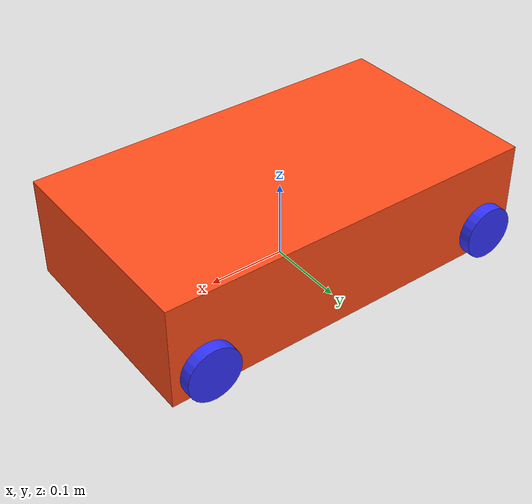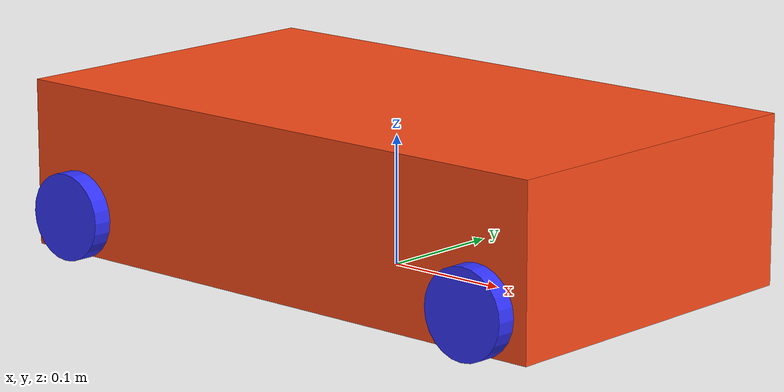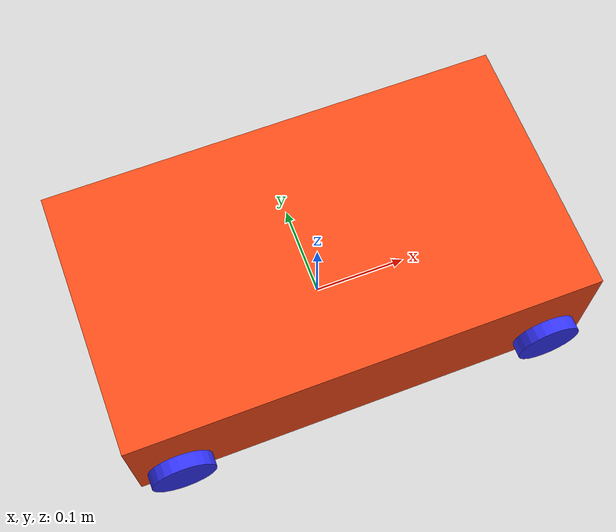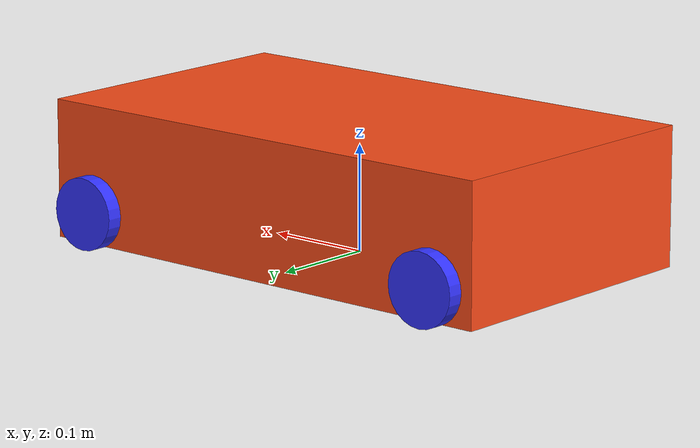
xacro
<?xml version="1.0"?>
<robot xmlns:xacro="http://www.ros.org/wiki/xacro" >

    <xacro:include filename="inertial_macros.xacro"/>

    <!-- Properties -->
    <xacro:property name="chassis_length" value="0.49"/>
    <xacro:property name="chassis_width" value="0.28"/>
    <xacro:property name="chassis_height" value="0.13"/>
    <xacro:property name="chassis_mass" value="5.0"/>

    <!-- Wheel properties -->
    <xacro:property name="wheel_radius" value="0.034"/>
    <xacro:property name="wheel_thickness" value="0.03"/>
    <xacro:property name="wheel_mass" value="0.05"/>

    <!-- Front wheels (steering) -->
    <xacro:property name="front_wheel_x" value="0.2"/>
    <xacro:property name="front_wheel_y" value="0.14"/>
    <xacro:property name="front_wheel_z" value="${-wheel_radius}"/>  <!-- Bánh xe chạm đất -->

    <!-- Rear wheels (fixed) -->
    <xacro:property name="rear_wheel_x" value="-0.2"/>
    <xacro:property name="rear_wheel_y" value="0.14"/>
    <xacro:property name="rear_wheel_z" value="${-wheel_radius}"/>  <!-- Bánh xe chạm đất -->

    <!-- Wheelbase (khoảng cách giữa bánh trước và sau) -->
    <xacro:property name="wheelbase" value="0.4"/>
    <!-- Track width (khoảng cách giữa 2 bánh trái/phải) - khớp Arduino -->
    <xacro:property name="track_width" value="0.21"/>

    <!-- Steering limits -->
    <xacro:property name="max_steer_angle" value="0.5236"/> <!-- ~30 degrees -->

    <material name="white">
        <color rgba="1 1 1 1" />
    </material>

    <material name="orange">
        <color rgba="1 0.3 0.1 1"/>
    </material>

    <material name="blue">
        <color rgba="0.2 0.2 1 1"/>
    </material>

    <material name="black">
        <color rgba="0 0 0 1"/>
    </material>

    <material name="red">
        <color rgba="1 0 0 1"/>
    </material>

    <!-- BASE LINK -->
    <link name="base_link">
    </link>

    <!-- BASE_FOOTPRINT LINK -->
    <joint name="base_footprint_joint" type="fixed">
        <parent link="base_link"/>
        <child link="base_footprint"/>
        <origin xyz="0 0 0" rpy="0 0 0"/>
    </joint>

    <link name="base_footprint">
    </link>

    <!-- CHASSIS LINK -->
    <joint name="chassis_joint" type="fixed">
        <parent link="base_link"/>
        <child link="chassis"/>
        <origin xyz="0 0 ${chassis_height/2}" rpy="0 0 0"/>
    </joint>

    <link name="chassis">
        <visual>
            <origin xyz="0 0 0" rpy="0 0 0"/>
            <geometry>
                <box size="${chassis_length} ${chassis_width} ${chassis_height}"/>
            </geometry>
            <material name="orange"/>
        </visual>
        <collision>
            <origin xyz="0 0 0" rpy="0 0 0"/>
            <geometry>
                <box size="${chassis_length} ${chassis_width} ${chassis_height}"/>
            </geometry>
        </collision>
        <xacro:inertial_box mass="${chassis_mass}" x="${chassis_length}" y="${chassis_width}" z="${chassis_height}">
            <origin xyz="0 0 0" rpy="0 0 0"/>
        </xacro:inertial_box>
    </link>

    <gazebo reference="chassis">
        <material>Gazebo/Orange</material>
    </gazebo>

    <!-- STEERING WHEEL JOINT (vô lăng - optional cho plugin) -->
    <joint name="steering_wheel_joint" type="revolute">
        <parent link="chassis"/>
        <child link="steering_wheel_link"/>
        <origin xyz="0.1 0 0.05" rpy="0 0 0"/>
        <axis xyz="0 0 1"/>
        <limit lower="${-max_steer_angle}" upper="${max_steer_angle}" effort="1000" velocity="10"/>
    </joint>

    <link name="steering_wheel_link">
        <visual>
            <origin xyz="0 0 0" rpy="0 0 0"/>
            <geometry>
                <cylinder radius="0.05" length="0.01"/>
            </geometry>
            <material name="black"/>
        </visual>
        <collision>
            <origin xyz="0 0 0" rpy="0 0 0"/>
            <geometry>
                <cylinder radius="0.05" length="0.01"/>
            </geometry>
        </collision>
        <xacro:inertial_cylinder mass="0.01" length="0.01" radius="0.05">
            <origin xyz="0 0 0" rpy="0 0 0"/>
        </xacro:inertial_cylinder>
    </link>

    <gazebo reference="steering_wheel_link">
        <material>Gazebo/Black</material>
    </gazebo>

    <!-- FRONT LEFT STEERING JOINT -->
    <joint name="front_left_steering_joint" type="revolute">
        <parent link="chassis"/>
        <child link="front_left_steering_link"/>
        <origin xyz="${front_wheel_x} ${front_wheel_y} ${front_wheel_z}" rpy="0 0 0"/>
        <axis xyz="0 0 1"/>
        <limit lower="${-max_steer_angle}" upper="${max_steer_angle}" effort="1000" velocity="10"/>
    </joint>

    <link name="front_left_steering_link">
        <visual>
            <origin xyz="0 0 0" rpy="0 0 0"/>
            <geometry>
                <box size="0.05 0.02 0.01"/>
            </geometry>
            <material name="black"/>
        </visual>
        <collision>
            <origin xyz="0 0 0" rpy="0 0 0"/>
            <geometry>
                <box size="0.05 0.02 0.01"/>
            </geometry>
        </collision>
        <xacro:inertial_box mass="0.01" x="0.05" y="0.02" z="0.01">
            <origin xyz="0 0 0" rpy="0 0 0"/>
        </xacro:inertial_box>
    </link>

    <!-- FRONT LEFT WHEEL -->
    <joint name="front_left_wheel_joint" type="continuous">
        <parent link="front_left_steering_link"/>
        <child link="front_left_wheel"/>
        <origin xyz="0 0 0" rpy="-${pi/2} 0 0"/>
        <axis xyz="0 0 1"/>
    </joint>

    <link name="front_left_wheel">
        <visual>
            <geometry>
                <cylinder radius="${wheel_radius}" length="${wheel_thickness}"/>
            </geometry>
            <material name="blue"/>
        </visual>
        <collision>
            <geometry>
                <cylinder radius="${wheel_radius}" length="${wheel_thickness}"/>
            </geometry>
        </collision>
        <xacro:inertial_cylinder mass="${wheel_mass}" length="${wheel_thickness}" radius="${wheel_radius}">
            <origin xyz="0 0 0" rpy="0 0 0"/>
        </xacro:inertial_cylinder>
    </link>

    <gazebo reference="front_left_wheel">
        <material>Gazebo/Blue</material>
    </gazebo>

    <!-- FRONT RIGHT STEERING JOINT -->
    <joint name="front_right_steering_joint" type="revolute">
        <parent link="chassis"/>
        <child link="front_right_steering_link"/>
        <origin xyz="${front_wheel_x} ${-front_wheel_y} ${front_wheel_z}" rpy="0 0 0"/>
        <axis xyz="0 0 1"/>
        <limit lower="${-max_steer_angle}" upper="${max_steer_angle}" effort="1000" velocity="10"/>
    </joint>

    <link name="front_right_steering_link">
        <visual>
            <origin xyz="0 0 0" rpy="0 0 0"/>
            <geometry>
                <box size="0.05 0.02 0.01"/>
            </geometry>
            <material name="black"/>
        </visual>
        <collision>
            <origin xyz="0 0 0" rpy="0 0 0"/>
            <geometry>
                <box size="0.05 0.02 0.01"/>
            </geometry>
        </collision>
        <xacro:inertial_box mass="0.01" x="0.05" y="0.02" z="0.01">
            <origin xyz="0 0 0" rpy="0 0 0"/>
        </xacro:inertial_box>
    </link>

    <!-- FRONT RIGHT WHEEL -->
    <joint name="front_right_wheel_joint" type="continuous">
        <parent link="front_right_steering_link"/>
        <child link="front_right_wheel"/>
        <origin xyz="0 0 0" rpy="${pi/2} 0 0"/>
        <axis xyz="0 0 -1"/>
    </joint>

    <link name="front_right_wheel">
        <visual>
            <geometry>
                <cylinder radius="${wheel_radius}" length="${wheel_thickness}"/>
            </geometry>
            <material name="blue"/>
        </visual>
        <collision>
            <geometry>
                <cylinder radius="${wheel_radius}" length="${wheel_thickness}"/>
            </geometry>
        </collision>
        <xacro:inertial_cylinder mass="${wheel_mass}" length="${wheel_thickness}" radius="${wheel_radius}">
            <origin xyz="0 0 0" rpy="0 0 0"/>
        </xacro:inertial_cylinder>
    </link>

    <gazebo reference="front_right_wheel">
        <material>Gazebo/Blue</material>
    </gazebo>

    <!-- REAR LEFT WHEEL (fixed) -->
    <joint name="rear_left_wheel_joint" type="continuous">
        <parent link="chassis"/>
        <child link="rear_left_wheel"/>
        <origin xyz="${rear_wheel_x} ${rear_wheel_y} ${rear_wheel_z}" rpy="-${pi/2} 0 0"/>
        <axis xyz="0 0 1"/>
    </joint>

    <link name="rear_left_wheel">
        <visual>
            <geometry>
                <cylinder radius="${wheel_radius}" length="${wheel_thickness}"/>
            </geometry>
            <material name="blue"/>
        </visual>
        <collision>
            <geometry>
                <cylinder radius="${wheel_radius}" length="${wheel_thickness}"/>
            </geometry>
        </collision>
        <xacro:inertial_cylinder mass="${wheel_mass}" length="${wheel_thickness}" radius="${wheel_radius}">
            <origin xyz="0 0 0" rpy="0 0 0"/>
        </xacro:inertial_cylinder>
    </link>

    <gazebo reference="rear_left_wheel">
        <material>Gazebo/Blue</material>
    </gazebo>

    <!-- REAR RIGHT WHEEL (fixed) -->
    <joint name="rear_right_wheel_joint" type="continuous">
        <parent link="chassis"/>
        <child link="rear_right_wheel"/>
        <origin xyz="${rear_wheel_x} ${-rear_wheel_y} ${rear_wheel_z}" rpy="${pi/2} 0 0"/>
        <axis xyz="0 0 -1"/>
    </joint>

    <link name="rear_right_wheel">
        <visual>
            <geometry>
                <cylinder radius="${wheel_radius}" length="${wheel_thickness}"/>
            </geometry>
            <material name="blue"/>
        </visual>
        <collision>
            <geometry>
                <cylinder radius="${wheel_radius}" length="${wheel_thickness}"/>
            </geometry>
        </collision>
        <xacro:inertial_cylinder mass="${wheel_mass}" length="${wheel_thickness}" radius="${wheel_radius}">
            <origin xyz="0 0 0" rpy="0 0 0"/>
        </xacro:inertial_cylinder>
    </link>

    <gazebo reference="rear_right_wheel">
        <material>Gazebo/Blue</material>
    </gazebo>

</robot>
